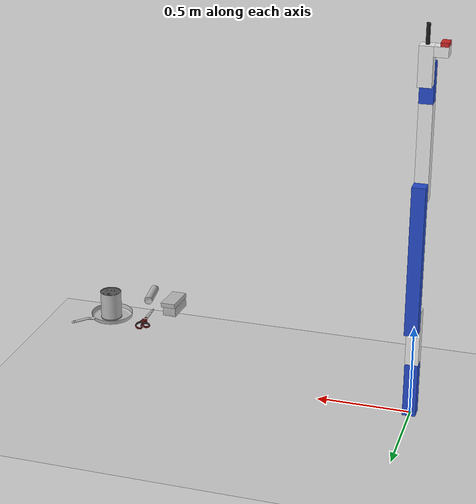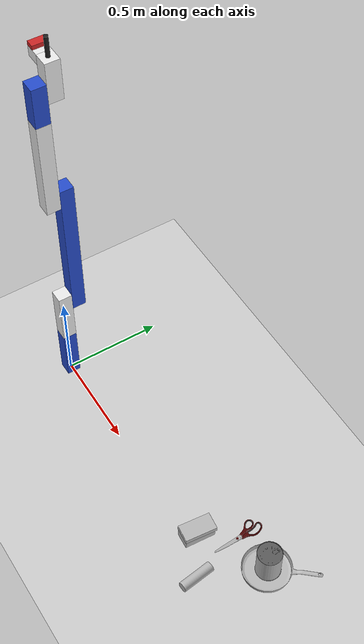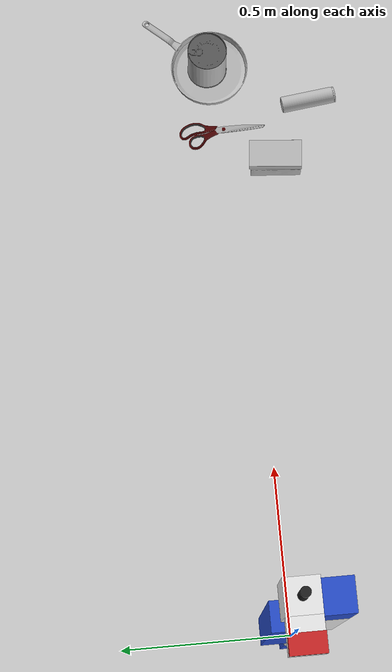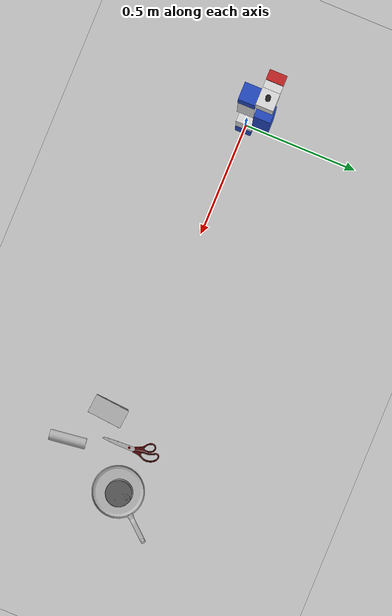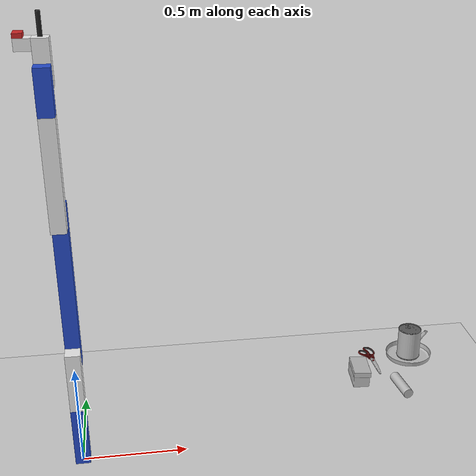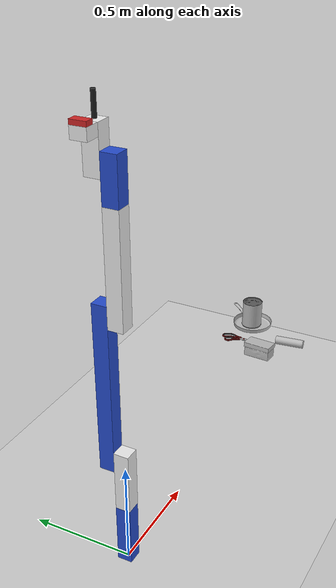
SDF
<sdf version="1.7">
 <world name="default">
  <light name="sun" type="directional">
   <pose>0 0 10 0 -0 0</pose>
   <diffuse>0.8 0.8 0.8 1</diffuse>
   <specular>0.2 0.2 0.2 1</specular>
   <attenuation>
    <range>1000</range>
    <constant>0.9</constant>
    <linear>0.01</linear>
    <quadratic>0.001</quadratic>
   </attenuation>
   <direction>-0.5 0.1 -0.9</direction>
   <spot><inner_angle>0</inner_angle><outer_angle>0</outer_angle><falloff>0</falloff></spot>
  </light>
  <model name="ground_plane">
   <static>1</static>
   <link name="link">
    <collision name="collision">
     <geometry><plane><normal>0 0 1</normal><size>100 100</size></plane></geometry>
     <surface><friction><ode><mu>100</mu><mu2>50</mu2></ode></friction></surface>
    </collision>
    <visual name="visual">
     <cast_shadows>0</cast_shadows>
     <geometry><plane><normal>0 0 1</normal><size>100 100</size></plane></geometry>
     <material>
      <script><uri>file://media/materials/scripts/gazebo.material</uri><name>Gazebo/Grey</name></script>
     </material>
    </visual>
   </link>
  </model>
  <gravity>0 0 -9.8</gravity>
  <magnetic_field>6e-06 2.3e-05 -4.2e-05</magnetic_field>
  <atmosphere type="adiabatic"/>
  <physics type="ode">
   <max_step_size>0.001</max_step_size>
   <real_time_factor>1</real_time_factor>
   <real_time_update_rate>1000</real_time_update_rate>
  </physics>
  <scene><ambient>0.4 0.4 0.4 1</ambient><background>0.7 0.7 0.7 1</background><shadows>1</shadows></scene>
  <spherical_coordinates>
   <surface_model>EARTH_WGS84</surface_model>
   <latitude_deg>0</latitude_deg>
   <longitude_deg>0</longitude_deg>
   <elevation>0</elevation>
   <heading_deg>0</heading_deg>
  </spherical_coordinates>
  <model name="oats_box">
   <link name="link">
    <inertial>
     <mass>0.1</mass>
     <inertia><ixx>1e-05</ixx><ixy>0</ixy><ixz>0</ixz><iyy>1e-05</iyy><iyz>0</iyz><izz>1e-05</izz></inertia>
    </inertial>
    <collision name="collision">
     <geometry><mesh><uri>/home/jan/ws_myrobot/src/myrobot/model/objects/oats/oats.dae</uri></mesh></geometry>
     <surface>
      <friction><ode><mu>1</mu><mu2>1</mu2></ode></friction>
      <contact><ode><kp>1e+07</kp><kd>1</kd><min_depth>0</min_depth><max_vel>0.01</max_vel></ode></contact>
     </surface>
    </collision>
    <visual name="visual">
     <geometry><mesh><uri>/home/jan/ws_myrobot/src/myrobot/model/objects/oats/oats.dae</uri></mesh></geometry>
     <material><lighting>1</lighting><shader type="pixel"/></material>
    </visual>
   </link>
   <static>0</static>
   <pose>1.33124 -0.069714 0.399843 2.45 1.54058 -2.33349</pose>
  </model>
  <model name="tea_box">
   <link name="link">
    <inertial>
     <mass>0.1</mass>
     <inertia><ixx>1e-05</ixx><ixy>0</ixy><ixz>0</ixz><iyy>1e-05</iyy><iyz>0</iyz><izz>1e-05</izz></inertia>
    </inertial>
    <collision name="collision">
     <geometry><mesh><uri>/home/jan/ws_myrobot/src/myrobot/model/objects/tea/tea.dae</uri></mesh></geometry>
     <surface>
      <friction><ode><mu>1</mu><mu2>1</mu2></ode></friction>
      <contact><ode><kp>1e+07</kp><kd>1</kd><min_depth>0</min_depth><max_vel>0.01</max_vel></ode></contact>
     </surface>
    </collision>
    <visual name="visual">
     <geometry><mesh><uri>/home/jan/ws_myrobot/src/myrobot/model/objects/tea/tea.dae</uri></mesh></geometry>
     <material><lighting>1</lighting><shader type="pixel"/></material>
    </visual>
   </link>
   <static>0</static>
   <pose>1.33585 -0.068636 0.438891 1.59446 -0.035148 3.04683</pose>
  </model>
  <model name="crisps_can">
   <link name="link">
    <inertial>
     <mass>0.1</mass>
     <inertia><ixx>1e-05</ixx><ixy>0</ixy><ixz>0</ixz><iyy>1e-05</iyy><iyz>0</iyz><izz>1e-05</izz></inertia>
    </inertial>
    <collision name="collision">
     <geometry><mesh><uri>/home/jan/ws_myrobot/src/myrobot/model/objects/crisps/crisps.dae</uri></mesh></geometry>
     <surface>
      <friction><ode><mu>1</mu><mu2>1</mu2></ode></friction>
      <contact><ode><kp>1e+07</kp><kd>1</kd><min_depth>0</min_depth><max_vel>0.01</max_vel></ode></contact>
     </surface>
    </collision>
    <visual name="visual">
     <geometry><mesh><uri>/home/jan/ws_myrobot/src/myrobot/model/objects/crisps/crisps.dae</uri></mesh></geometry>
     <material><lighting>1</lighting><shader type="pixel"/></material>
    </visual>
   </link>
   <static>0</static>
   <pose>1.50822 -0.184784 0.396243 -3.14137 -0.089595 -3.01437</pose>
  </model>
  <model name="soup_can">
   <link name="link">
    <inertial>
     <mass>0.1</mass>
     <inertia><ixx>1e-05</ixx><ixy>0</ixy><ixz>0</ixz><iyy>1e-05</iyy><iyz>0</iyz><izz>1e-05</izz></inertia>
    </inertial>
    <collision name="collision">
     <geometry><mesh><uri>/home/jan/ws_myrobot/src/myrobot/model/objects/soup/soup.dae</uri></mesh></geometry>
     <surface>
      <friction><ode><mu>1</mu><mu2>1</mu2></ode></friction>
      <contact><ode><kp>1e+07</kp><kd>1</kd><min_depth>0</min_depth><max_vel>0.01</max_vel></ode></contact>
     </surface>
    </collision>
    <visual name="visual">
     <geometry><mesh><uri>/home/jan/ws_myrobot/src/myrobot/model/objects/soup/soup.dae</uri></mesh></geometry>
     <material><lighting>1</lighting><shader type="pixel"/></material>
    </visual>
   </link>
   <static>0</static>
   <pose>1.63122 0.101136 0.449599 -1.56575 -0.001206 -0.060675</pose>
  </model>
  <model name="Scissors">
   <link name="link">
    <inertial>
     <mass>0.1</mass>
     <inertia><ixx>1e-05</ixx><ixy>0</ixy><ixz>0</ixz><iyy>1e-05</iyy><iyz>0</iyz><izz>1e-05</izz></inertia>
    </inertial>
    <collision name="collision">
     <geometry>
      <mesh><uri>/home/jan/ws_myrobot/src/myrobot/model/objects/scissors/scissors.dae</uri></mesh>
     </geometry>
     <surface>
      <friction><ode><mu>1</mu><mu2>1</mu2></ode></friction>
      <contact><ode><kp>1e+07</kp><kd>1</kd><min_depth>0</min_depth><max_vel>0.01</max_vel></ode></contact>
     </surface>
    </collision>
    <visual name="visual">
     <geometry>
      <mesh><uri>/home/jan/ws_myrobot/src/myrobot/model/objects/scissors/scissors.dae</uri></mesh>
     </geometry>
     <material><lighting>1</lighting><shader type="pixel"/></material>
    </visual>
   </link>
   <static>0</static>
   <pose>1.43864 0.109048 0.378204 0.000582 0.000558 0.001476</pose>
  </model>
  <model name="Frying_pan">
   <link name="link">
    <inertial>
     <mass>0.1</mass>
     <inertia><ixx>1e-05</ixx><ixy>0</ixy><ixz>0</ixz><iyy>1e-05</iyy><iyz>0</iyz><izz>1e-05</izz></inertia>
    </inertial>
    <collision name="collision">
     <geometry><mesh><uri>/home/jan/ws_myrobot/src/myrobot/model/objects/pan/pan.dae</uri></mesh></geometry>
     <surface>
      <friction><ode><mu>1</mu><mu2>1</mu2></ode></friction>
      <contact><ode><kp>1e+07</kp><kd>1</kd><min_depth>0</min_depth><max_vel>0.01</max_vel></ode></contact>
     </surface>
    </collision>
    <visual name="visual">
     <geometry><mesh><uri>/home/jan/ws_myrobot/src/myrobot/model/objects/pan/pan.dae</uri></mesh></geometry>
     <material><lighting>1</lighting><shader type="pixel"/></material>
    </visual>
   </link>
   <static>0</static>
   <pose>1.63211 0.097592 0.374802 -1.56986 0.004211 2.42804</pose>
  </model>
  <model name="myrobot">
   <joint name="joint_world_base" type="fixed">
    <pose relative_to="__model__">0 0 0 0 -0 0</pose>
    <parent>world</parent>
    <child>link_base</child>
   </joint>
   <link name="link_base">
    <pose relative_to="joint_world_base">0 0 0 0 -0 0</pose>
    <inertial>
     <mass>1</mass>
     <inertia><ixx>1</ixx><ixy>0</ixy><ixz>0</ixz><iyy>1</iyy><iyz>0</iyz><izz>1</izz></inertia>
    </inertial>
    <collision name="link_base_collision">
     <pose>0 0 0.15 0 -0 0</pose>
     <geometry><box><size>0.07 0.07 0.3</size></box></geometry>
     <surface><friction><ode><mu>0.2</mu><mu2>0.2</mu2></ode></friction></surface>
    </collision>
    <visual name="link_base_visual">
     <pose>0 0 0.15 0 -0 0</pose>
     <geometry><box><size>0.07 0.07 0.3</size></box></geometry>
     <material>
      <script><name>Gazebo/Blue</name><uri>file://media/materials/scripts/gazebo.material</uri></script>
     </material>
    </visual>
   </link>
   <joint name="joint_base_1" type="revolute">
    <pose relative_to="link_base">0 0 0.3 0 -0 0</pose>
    <parent>link_base</parent>
    <child>link_1</child>
    <axis>
     <xyz>0 0 1</xyz>
     <limit><lower>-2.5</lower><upper>2.5</upper><effort>1000</effort><velocity>5</velocity></limit>
     <dynamics>
      <damping>0.7</damping>
      <friction>0.7</friction>
      <spring_reference>0</spring_reference>
      <spring_stiffness>0</spring_stiffness>
     </dynamics>
    </axis>
   </joint>
   <link name="link_1">
    <pose relative_to="joint_base_1">0 0 0 0 -0 0</pose>
    <inertial>
     <mass>1</mass>
     <inertia><ixx>1</ixx><ixy>0</ixy><ixz>0</ixz><iyy>1</iyy><iyz>0</iyz><izz>1</izz></inertia>
    </inertial>
    <collision name="link_1_collision">
     <pose>0 0 0.15 0 -0 0</pose>
     <geometry><box><size>0.07 0.07 0.3</size></box></geometry>
     <surface><friction><ode><mu>0.2</mu><mu2>0.2</mu2></ode></friction></surface>
    </collision>
    <visual name="link_1_visual">
     <pose>0 0 0.15 0 -0 0</pose>
     <geometry><box><size>0.07 0.07 0.3</size></box></geometry>
     <material>
      <script><name>Gazebo/White</name><uri>file://media/materials/scripts/gazebo.material</uri></script>
     </material>
    </visual>
   </link>
   <joint name="joint_1_2" type="revolute">
    <pose relative_to="link_1">0 0.07 0.25 0 -0 0</pose>
    <parent>link_1</parent>
    <child>link_2</child>
    <axis>
     <xyz>0 1 0</xyz>
     <limit><lower>-2</lower><upper>2</upper><effort>1000</effort><velocity>5</velocity></limit>
     <dynamics>
      <damping>0.7</damping>
      <friction>0.7</friction>
      <spring_reference>0</spring_reference>
      <spring_stiffness>0</spring_stiffness>
     </dynamics>
    </axis>
   </joint>
   <link name="link_2">
    <pose relative_to="joint_1_2">0 0 0 0 -0 0</pose>
    <inertial>
     <mass>2</mass>
     <inertia><ixx>1</ixx><ixy>0</ixy><ixz>0</ixz><iyy>1</iyy><iyz>0</iyz><izz>1</izz></inertia>
    </inertial>
    <collision name="link_2_collision">
     <pose>0 0 0.35 0 -0 0</pose>
     <geometry><box><size>0.07 0.07 0.8</size></box></geometry>
     <surface><friction><ode><mu>0.2</mu><mu2>0.2</mu2></ode></friction></surface>
    </collision>
    <visual name="link_2_visual">
     <pose>0 0 0.35 0 -0 0</pose>
     <geometry><box><size>0.07 0.07 0.8</size></box></geometry>
     <material>
      <script><name>Gazebo/Blue</name><uri>file://media/materials/scripts/gazebo.material</uri></script>
     </material>
    </visual>
   </link>
   <joint name="joint_2_3" type="revolute">
    <pose relative_to="link_2">0 -0.07 0.7 0 -0 0</pose>
    <parent>link_2</parent>
    <child>link_3</child>
    <axis>
     <xyz>0 1 0</xyz>
     <limit><lower>-2</lower><upper>2</upper><effort>1000</effort><velocity>5</velocity></limit>
     <dynamics>
      <damping>0.7</damping>
      <friction>0.7</friction>
      <spring_reference>0</spring_reference>
      <spring_stiffness>0</spring_stiffness>
     </dynamics>
    </axis>
   </joint>
   <link name="link_3">
    <pose relative_to="joint_2_3">0 0 0 0 -0 0</pose>
    <inertial>
     <mass>1.5</mass>
     <inertia><ixx>1</ixx><ixy>0</ixy><ixz>0</ixz><iyy>1</iyy><iyz>0</iyz><izz>1</izz></inertia>
    </inertial>
    <collision name="link_3_collision">
     <pose>0 0 0.2 0 -0 0</pose>
     <geometry><box><size>0.07 0.07 0.5</size></box></geometry>
     <surface><friction><ode><mu>0.2</mu><mu2>0.2</mu2></ode></friction></surface>
    </collision>
    <visual name="link_3_visual">
     <pose>0 0 0.2 0 -0 0</pose>
     <geometry><box><size>0.07 0.07 0.5</size></box></geometry>
     <material>
      <script><name>Gazebo/White</name><uri>file://media/materials/scripts/gazebo.material</uri></script>
     </material>
    </visual>
   </link>
   <joint name="joint_3_4" type="revolute">
    <pose relative_to="link_3">0 0 0.45 0 -0 0</pose>
    <parent>link_3</parent>
    <child>link_4</child>
    <axis>
     <xyz>0 0 1</xyz>
     <limit><lower>-2.5</lower><upper>2.5</upper><effort>1000</effort><velocity>5</velocity></limit>
     <dynamics>
      <damping>0.7</damping>
      <friction>0.7</friction>
      <spring_reference>0</spring_reference>
      <spring_stiffness>0</spring_stiffness>
     </dynamics>
    </axis>
   </joint>
   <link name="link_4">
    <pose relative_to="joint_3_4">0 0 0 0 -0 0</pose>
    <inertial>
     <mass>0.7</mass>
     <inertia><ixx>1</ixx><ixy>0</ixy><ixz>0</ixz><iyy>1</iyy><iyz>0</iyz><izz>1</izz></inertia>
    </inertial>
    <collision name="link_4_collision">
     <pose>0 0 0.1 0 -0 0</pose>
     <geometry><box><size>0.07 0.07 0.2</size></box></geometry>
     <surface><friction><ode><mu>0.2</mu><mu2>0.2</mu2></ode></friction></surface>
    </collision>
    <visual name="link_4_visual">
     <pose>0 0 0.1 0 -0 0</pose>
     <geometry><box><size>0.07 0.07 0.2</size></box></geometry>
     <material>
      <script><name>Gazebo/Blue</name><uri>file://media/materials/scripts/gazebo.material</uri></script>
     </material>
    </visual>
   </link>
   <joint name="joint_4_gripper" type="revolute">
    <pose relative_to="link_4">0 0.07 0.15 0 -0 0</pose>
    <parent>link_4</parent>
    <child>link_gripper</child>
    <axis>
     <xyz>0 1 0</xyz>
     <limit><lower>-2</lower><upper>2</upper><effort>1000</effort><velocity>5</velocity></limit>
     <dynamics>
      <damping>0.7</damping>
      <friction>0.7</friction>
      <spring_reference>0</spring_reference>
      <spring_stiffness>0</spring_stiffness>
     </dynamics>
    </axis>
   </joint>
   <link name="link_gripper">
    <pose relative_to="joint_4_gripper">0 0 0 0 -0 0</pose>
    <inertial>
     <pose>-0.035 0 0.0625 0 -0 0</pose>
     <mass>0.4</mass>
     <inertia>
      <ixx>2.00156</ixx>
      <ixy>0</ixy>
      <ixz>0.000875</ixz>
      <iyy>2.00205</iyy>
      <iyz>0</iyz>
      <izz>2.00049</izz>
     </inertia>
    </inertial>
    <collision name="link_gripper_collision">
     <pose>0 0 0.05 0 -0 0</pose>
     <geometry><box><size>0.07 0.07 0.2</size></box></geometry>
     <surface><friction><ode><mu>0.2</mu><mu2>0.2</mu2></ode></friction></surface>
    </collision>
    <collision name="link_gripper_fixed_joint_lump__link_cameraHolder_collision_1">
     <pose>-0.07 0 0.125 0 -0 0</pose>
     <geometry><box><size>0.07 0.07 0.05</size></box></geometry>
     <surface><friction><ode><mu>0.2</mu><mu2>0.2</mu2></ode></friction></surface>
    </collision>
    <visual name="link_gripper_visual">
     <pose>0 0 0.05 0 -0 0</pose>
     <geometry><box><size>0.07 0.07 0.2</size></box></geometry>
     <material>
      <script><name>Gazebo/White</name><uri>file://media/materials/scripts/gazebo.material</uri></script>
     </material>
    </visual>
    <visual name="link_gripper_fixed_joint_lump__link_cameraHolder_visual_1">
     <pose>-0.07 0 0.125 0 -0 0</pose>
     <geometry><box><size>0.07 0.07 0.05</size></box></geometry>
     <material>
      <script><name>Gazebo/White</name><uri>file://media/materials/scripts/gazebo.material</uri></script>
     </material>
    </visual>
   </link>
   <joint name="joint_cameraHolder_camera" type="revolute">
    <pose relative_to="link_gripper">-0.085 0 0.16 3.14159 -1.57079 3.14159</pose>
    <parent>link_gripper</parent>
    <child>link_camera</child>
    <axis>
     <xyz>1 0 0</xyz>
     <limit><lower>0</lower><upper>0</upper><effort>1000</effort><velocity>0</velocity></limit>
     <dynamics>
      <damping>100</damping>
      <friction>100</friction>
      <spring_reference>0</spring_reference>
      <spring_stiffness>0</spring_stiffness>
     </dynamics>
    </axis>
   </joint>
   <link name="link_camera">
    <pose relative_to="joint_cameraHolder_camera">0 0 0 0 -0 0</pose>
    <inertial>
     <mass>0.1</mass>
     <inertia><ixx>1</ixx><ixy>0</ixy><ixz>0</ixz><iyy>1</iyy><iyz>0</iyz><izz>1</izz></inertia>
    </inertial>
    <collision name="link_camera_collision">
     <geometry><box><size>0.02 0.07 0.04</size></box></geometry>
    </collision>
    <visual name="link_camera_visual">
     <geometry><box><size>0.02 0.07 0.04</size></box></geometry>
     <material>
      <script><name>Gazebo/Red</name><uri>file://media/materials/scripts/gazebo.material</uri></script>
     </material>
    </visual>
    <sensor name="sensor_name" type="multicamera">
     <camera name="left">
      <horizontal_fov>1.39626</horizontal_fov>
      <image><width>800</width><height>800</height><format>R8G8B8</format></image>
      <clip><near>0.02</near><far>300</far></clip>
      <noise><type>gaussian</type><mean>0</mean><stddev>0.007</stddev></noise>
     </camera>
     <camera name="right">
      <pose>0 -0.07 0 0 -0 0</pose>
      <horizontal_fov>1.39626</horizontal_fov>
      <image><width>800</width><height>800</height><format>R8G8B8</format></image>
      <clip><near>0.02</near><far>300</far></clip>
      <noise><type>gaussian</type><mean>0</mean><stddev>0.007</stddev></noise>
     </camera>
     <update_rate>1</update_rate>
     <plugin name="cameras" filename="libgazebo_ros_camera.so">
      <ros>
       <namespace>/robot_model</namespace>
       <argument>custom_camera/left/image_raw:=camera/left/image</argument>
       <argument>custom_camera/right/image_raw:=camera/right/image</argument>
       <argument>custom_camera/left/camera_info:=camera/left/camera_info</argument>
       <argument>custom_camera/right/camera_info:=camera/right/camera_info</argument>
      </ros>
      <camera_name>stereocamera</camera_name>
      <frameName>left_camera_optical_frame</frameName>
     </plugin>
    </sensor>
   </link>
   <joint name="joint_gripper_vacuum" type="revolute">
    <pose relative_to="link_gripper">0 0 0.25 3.14159 -1.57079 3.14159</pose>
    <parent>link_gripper</parent>
    <child>link_vacuum</child>
    <axis>
     <xyz>1 0 0</xyz>
     <limit><lower>-2</lower><upper>2</upper><effort>1000</effort><velocity>5</velocity></limit>
     <dynamics>
      <damping>0.7</damping>
      <friction>0.7</friction>
      <spring_reference>0</spring_reference>
      <spring_stiffness>0</spring_stiffness>
     </dynamics>
    </axis>
   </joint>
   <link name="link_vacuum">
    <pose relative_to="joint_gripper_vacuum">0 0 0 0 -0 0</pose>
    <inertial>
     <mass>0.1</mass>
     <inertia><ixx>1</ixx><ixy>0</ixy><ixz>0</ixz><iyy>1</iyy><iyz>0</iyz><izz>1</izz></inertia>
    </inertial>
    <collision name="link_vacuum_collision">
     <pose>-0.05 0 0 3.14159 1.57079 3.14159</pose>
     <geometry><cylinder><length>0.1</length><radius>0.01</radius></cylinder></geometry>
     <surface><friction><ode><mu>0.2</mu><mu2>0.2</mu2></ode></friction></surface>
    </collision>
    <visual name="link_vacuum_visual">
     <pose>-0.05 0 0 3.14159 1.57079 3.14159</pose>
     <geometry><cylinder><length>0.1</length><radius>0.01</radius></cylinder></geometry>
     <material>
      <script><name>Gazebo/Black</name><uri>file://media/materials/scripts/gazebo.material</uri></script>
     </material>
    </visual>
   </link>
   <joint name="joint_vacuum_tcp" type="revolute">
    <pose relative_to="link_vacuum">0 0 0 0 -0 0</pose>
    <parent>link_vacuum</parent>
    <child>link_tcp</child>
    <axis>
     <xyz>1 0 0</xyz>
     <limit><lower>-2</lower><upper>2</upper><effort>1000</effort><velocity>5</velocity></limit>
     <dynamics>
      <damping>0.7</damping>
      <friction>0.7</friction>
      <spring_reference>0</spring_reference>
      <spring_stiffness>0</spring_stiffness>
     </dynamics>
    </axis>
   </joint>
   <link name="link_tcp">
    <pose relative_to="joint_vacuum_tcp">0 0 0 0 -0 0</pose>
    <inertial>
     <mass>0.001</mass>
     <inertia><ixx>1</ixx><ixy>0</ixy><ixz>0</ixz><iyy>1</iyy><iyz>0</iyz><izz>1</izz></inertia>
    </inertial>
    <collision name="link_tcp_collision">
     <geometry><box><size>0.0001 0.0001 0.0001</size></box></geometry>
     <surface><friction><ode><mu>0.2</mu><mu2>0.2</mu2></ode></friction></surface>
    </collision>
    <visual name="link_tcp_visual">
     <geometry><box><size>0.0001 0.0001 0.0001</size></box></geometry>
     <material>
      <script><name>Gazebo/Black</name><uri>file://media/materials/scripts/gazebo.material</uri></script>
     </material>
    </visual>
   </link>
   <plugin name="gazebo_ros2_control" filename="libgazebo_ros2_control.so">
    <parameters>/home/jan/ws_myrobot/install/myrobot/share/myrobot/model/myrobot_ros2_controllers.yaml</parameters>
   </plugin>
   <static>0</static>
   <plugin name="vacuum_gripper" filename="libgazebo_ros_vacuum_gripper.so">
    <ros><namespace>/robot_model</namespace></ros>
    <link_name>link_tcp</link_name>
    <max_distance>0.3</max_distance>
   </plugin>
  </model>
 </world>
</sdf>
